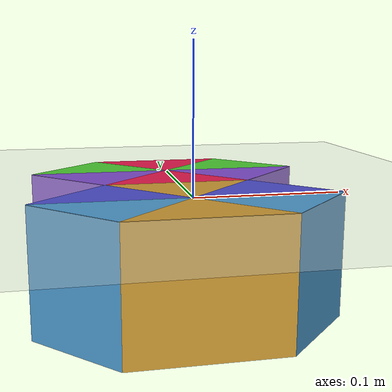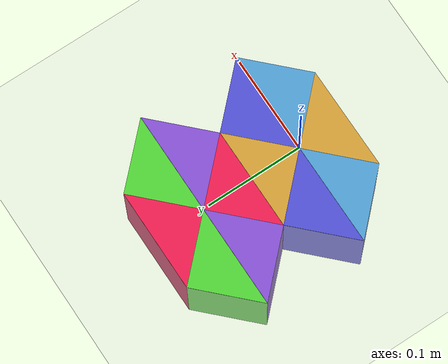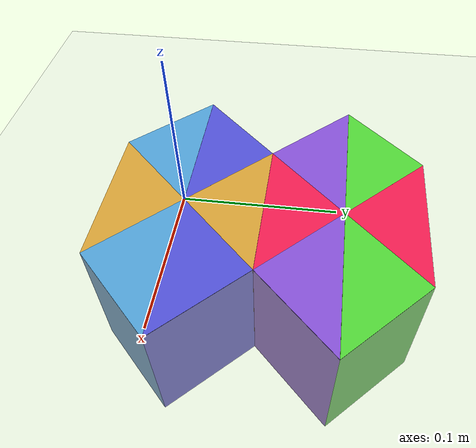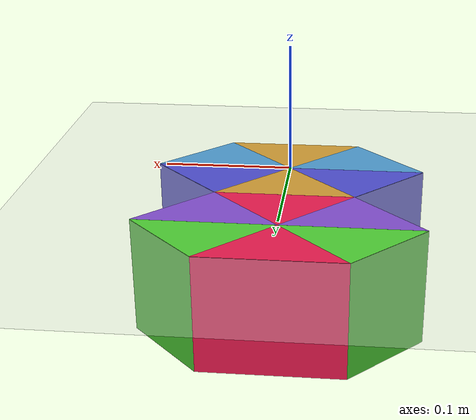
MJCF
<mujoco model="two_prisms_hinge">
    <option integrator="implicitfast" timestep="0.001"/>
    <compiler angle="radian" inertiafromgeom="true"/>
    <!-- gravity to pull it down -->
    <option gravity="0 0 -9.81"/>

    <asset>
        <!-- Sky -->
        <texture type="skybox" builtin="gradient" rgb1="1 1 1" rgb2="1 1 1" width="512" height="3072" />

        <!-- Ground -->
        <texture type="2d" name="groundplane" builtin="checker" mark="edge" rgb1="0.9 0.9 0.9" rgb2="0.8 0.8 0.8" markrgb="0.8 0.8 0.8" width="100" height="100" />
        <material name="groundplane" texture="groundplane" texuniform="true" texrepeat="10 10" reflectance="0.1" />
    </asset>

    <!-- Haze -->
    <visual>
        <headlight diffuse="0.6 0.6 0.6" ambient="0.3 0.3 0.3" specular="0 0 0" />
        <rgba haze="0.3 0.5 0.7 1" />
    </visual>

    <worldbody>
        <!-- Ground Collision -->
        <light pos="10 -10 20" dir="-1 1 -1.5" diffuse="0.5 0.5 0.5" directional="false" />
        <geom name="floor" group="1" size="0 0 0.01" type="plane" material="groundplane" />
    </worldbody>

    <asset>
        <mesh name="prism_mesh"
              vertex="
                -0.0530 -0.0530 -0.09       0.0530 -0.0530 -0.09         0 0 -0.09
                -0.0530 -0.0530 0           0.0530 -0.0530 0             0 0 0"
              face="
                2 1 0   4 5 3
                1 3 0   4 3 1
                2 4 1   5 4 2
                0 5 2   3 5 0"/>
    </asset>

    <!-- Robot -->
    <worldbody>
        <!-- prism 1-->
        <body name="prism1_body" pos="0 0 0" euler="0 0 3.14159">
            <geom type="mesh" mesh="prism_mesh" rgba="0.8 0.6 0.2 1" density="288"/>
            <!-- free joint lets it fall and move and stuff -->
            <joint type="free"/>

            <!-- prism 2-->
            <body name="prism2_body" pos="0.0530 -0.0530 0" euler="0 0 3.14159">
                <geom type="mesh"  mesh="prism_mesh" rgba="0.3 0.3 0.8 1"  density="288"/>
                <joint name="jaw_hinge_2" type="hinge" pos="0.02652 -0.02652 0" axis="-1 1 0" range="0 3.14" damping="0.02"/>

                <!-- prism 4-->
                <body name="prism4_body" pos="0 -0.10606 0" euler="0 0 3.141592">
                    <geom type="mesh" mesh="prism_mesh" rgba="0.3 0.6 0.8 1" density="288"/>
                    <joint name="jaw_hinge_4" type="hinge" pos="0 -0.0530 -0.09" axis="-1 0 0" range="0 3.14" damping="0.02"/>

                    <!-- prism 6-->
                    <body name="prism6_body" pos="-0.0530 -0.0530 0" euler="0 0 3.141592">
                        <geom type="mesh" mesh="prism_mesh" rgba="0.8 0.6 0.2 1" density="288"/>
                        <joint name="jaw_hinge_6" type="hinge" pos="-0.02652 -0.02652 0" axis="-1 -1 0" range="0 3.14" damping="0.02"/>
                    </body>
                </body>
            </body>

            <!-- prism 3-->
            <body name="prism3_body" pos="-0.0530 -0.0530 0" euler="0 0 3.14159">
                <geom type="mesh" mesh="prism_mesh" rgba="0.3 0.3 0.8 1" density="288"/>
                <joint name="jaw_hinge_3" type="hinge" pos="-0.02652 -0.02652 0" axis="-1 -1 0" range="0 3.14" damping="0.02"/>

                <!-- prism 5-->
                <body name="prism5_body" pos="0 -0.10606 0" euler="0 0 3.141592">
                    <geom type="mesh" mesh="prism_mesh" rgba="0.3 0.6 0.8 1" density="288"/>
                    <joint name="jaw_hinge_5" type="hinge" pos="0 -0.0530 -0.09" axis="-1 0 0" range="0 3.14" damping="0.02"/>
                </body>
            </body>

            <!-- prism 7-->
            <body name="prism7_body" pos="0 -0.10606 0" euler="0 0 3.14159">
                <geom type="mesh" mesh="prism_mesh" rgba="0.9 0.1 0.3 1" density="288"/>
                <joint name="jaw_hinge_7" type="hinge" pos="0 -0.0530 -0.09" axis="-1 0 0" range="0 3.14" damping="0.02"/>

                <!-- prism 8-->
                <body name="prism8_body" pos="0.0530 -0.0530 0" euler="0 0 3.14159">
                    <geom type="mesh"  mesh="prism_mesh" rgba="0.5 0.3 0.8 1"  density="288"/>
                    <joint name="jaw_hinge_8" type="hinge" pos="0.02652 -0.02652 0" axis="-1 1 0" range="0 3.14" damping="0.02"/>

                    <!-- prism 10-->
                    <body name="prism10_body" pos="0 -0.10606 0" euler="0 0 3.141592">
                        <geom type="mesh" mesh="prism_mesh" rgba="0.3 0.8 0.2 1" density="288"/>
                        <joint name="jaw_hinge_10" type="hinge" pos="0 -0.0530 -0.09" axis="-1 0 0" range="0 3.14" damping="0.02"/>

                        <!-- prism 12-->
                        <body name="prism12_body" pos="-0.0530 -0.0530 0" euler="0 0 3.141592">
                            <geom type="mesh" mesh="prism_mesh" rgba="0.9 0.1 0.3 1" density="288"/>
                            <joint name="jaw_hinge_12" type="hinge" pos="-0.02652 -0.02652 0" axis="-1 -1 0" range="0 3.14" damping="0.02"/>
                        </body>
                    </body>
                </body>

                <!-- prism 9-->
                <body name="prism9_body" pos="-0.0530 -0.0530 0" euler="0 0 3.14159">
                    <geom type="mesh" mesh="prism_mesh" rgba="0.5 0.3 0.8 1" density="288"/>
                    <joint name="jaw_hinge_9" type="hinge" pos="-0.02652 -0.02652 0" axis="-1 -1 0" range="0 3.14" damping="0.02"/>

                    <!-- prism 11-->
                    <body name="prism11_body" pos="0 -0.10606 0" euler="0 0 3.141592">
                        <geom type="mesh" mesh="prism_mesh" rgba="0.3 0.8 0.2 1" density="288"/>
                        <joint name="jaw_hinge_11" type="hinge" pos="0 -0.0530 -0.09" axis="-1 0 0" range="0 3.14" damping="0.02"/>
                    </body>
                </body>
            </body>
        </body>
    </worldbody>

    <!-- Actuations and Constraints -->
    <actuator>
        <position
            name="l_left" tendon="hinges_3_6" kp="10" kv="1" ctrlrange="0 3.14" ctrllimited="true" forcelimited="true" forcerange="-0.3924 0.3924"/>
    </actuator>

    <tendon>
        <fixed name="hinges_3_6">
            <joint joint="jaw_hinge_3" coef="0.5"/>
            <joint joint="jaw_hinge_6" coef="0.5"/>
        </fixed>
    </tendon>

    <actuator>
        <position
            name="r_left" joint="jaw_hinge_2" kp="10" kv="1" ctrlrange="0 3.14" ctrllimited="true" forcelimited="true" forcerange="-0.3924 0.3924"/>
    </actuator>

    <actuator>
        <position name="m_left" tendon="hinges_4_5" kp="10" kv="1" ctrlrange="0 3.14" ctrllimited="true" forcelimited="true" forcerange="-0.3924 0.3924"/>
    </actuator>

    <tendon>
        <fixed name="hinges_4_5">
            <joint joint="jaw_hinge_4" coef="0.5"/>
            <joint joint="jaw_hinge_5" coef="0.5"/>
        </fixed>
    </tendon>

    <actuator>
        <position
            name="center" joint="jaw_hinge_7" kp="10" kv="1" ctrlrange="0 3.14" ctrllimited="true" forcelimited="true" forcerange="-0.83385 0.83385"/>
    </actuator>

    <actuator>
        <position
            name="r_right" joint="jaw_hinge_8" kp="10" kv="1" ctrlrange="0 3.14" ctrllimited="true" forcelimited="true" forcerange="-0.3924 0.3924"/>
    </actuator>

    <actuator>
        <position
            name="l_right" tendon="hinges_9_12" kp="10" kv="1" ctrlrange="0 3.14" ctrllimited="true" forcelimited="true" forcerange="-0.3924 0.3924"/>
    </actuator>

    <tendon>
        <fixed name="hinges_9_12">
            <joint joint="jaw_hinge_9" coef="0.5"/>
            <joint joint="jaw_hinge_12" coef="0.5"/>
        </fixed>
    </tendon>

    <actuator>
        <position
            name="m_right" tendon="hinges_10_11" kp="10" kv="1" ctrlrange="0 3.14" ctrllimited="true" forcelimited="true" forcerange="-0.3924 0.3924"/>
    </actuator>

    <tendon>
        <fixed name="hinges_10_11">
            <joint joint="jaw_hinge_10" coef="0.5"/>
            <joint joint="jaw_hinge_11" coef="0.5"/>
        </fixed>
    </tendon>

    <!-- These are the loop closure constraints. At compile time, we anchor body2 to body1 at
    the anchor point, relative to body1 -->
    <equality>
        <connect name="close_hex_1" body1="prism5_body" body2="prism6_body" anchor="0 0 0"/>
    </equality>

    <equality>
        <connect name="close_hex_2" body1="prism5_body" body2="prism6_body" anchor="1 -1 0"/>
    </equality>

    <equality>
        <connect name="close_hex_3" body1="prism11_body" body2="prism12_body" anchor="0 0 0"/>
    </equality>

    <equality>
        <connect name="close_hex_4" body1="prism11_body" body2="prism12_body" anchor="1 -1 0"/>
    </equality>
</mujoco>
